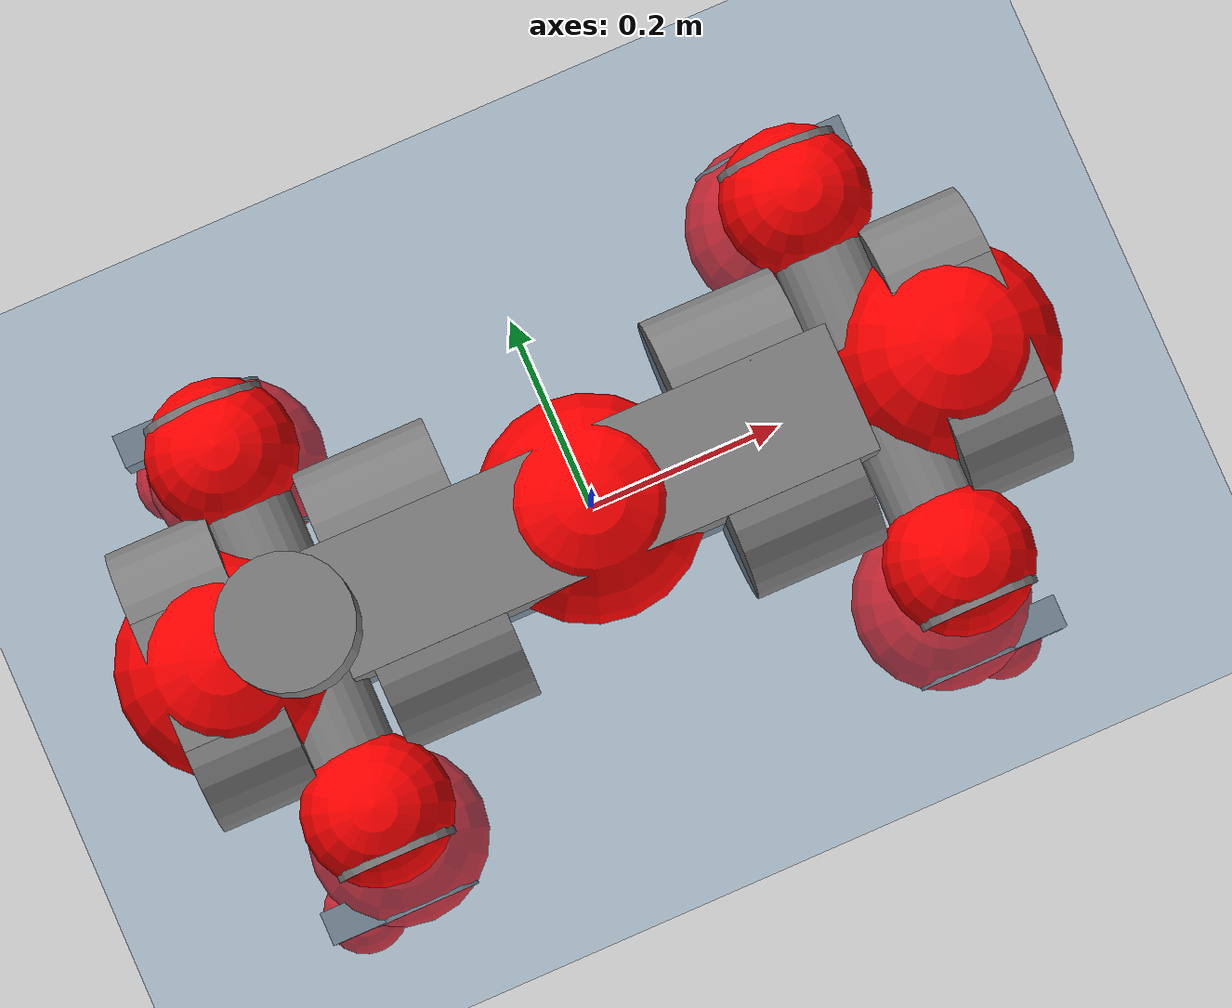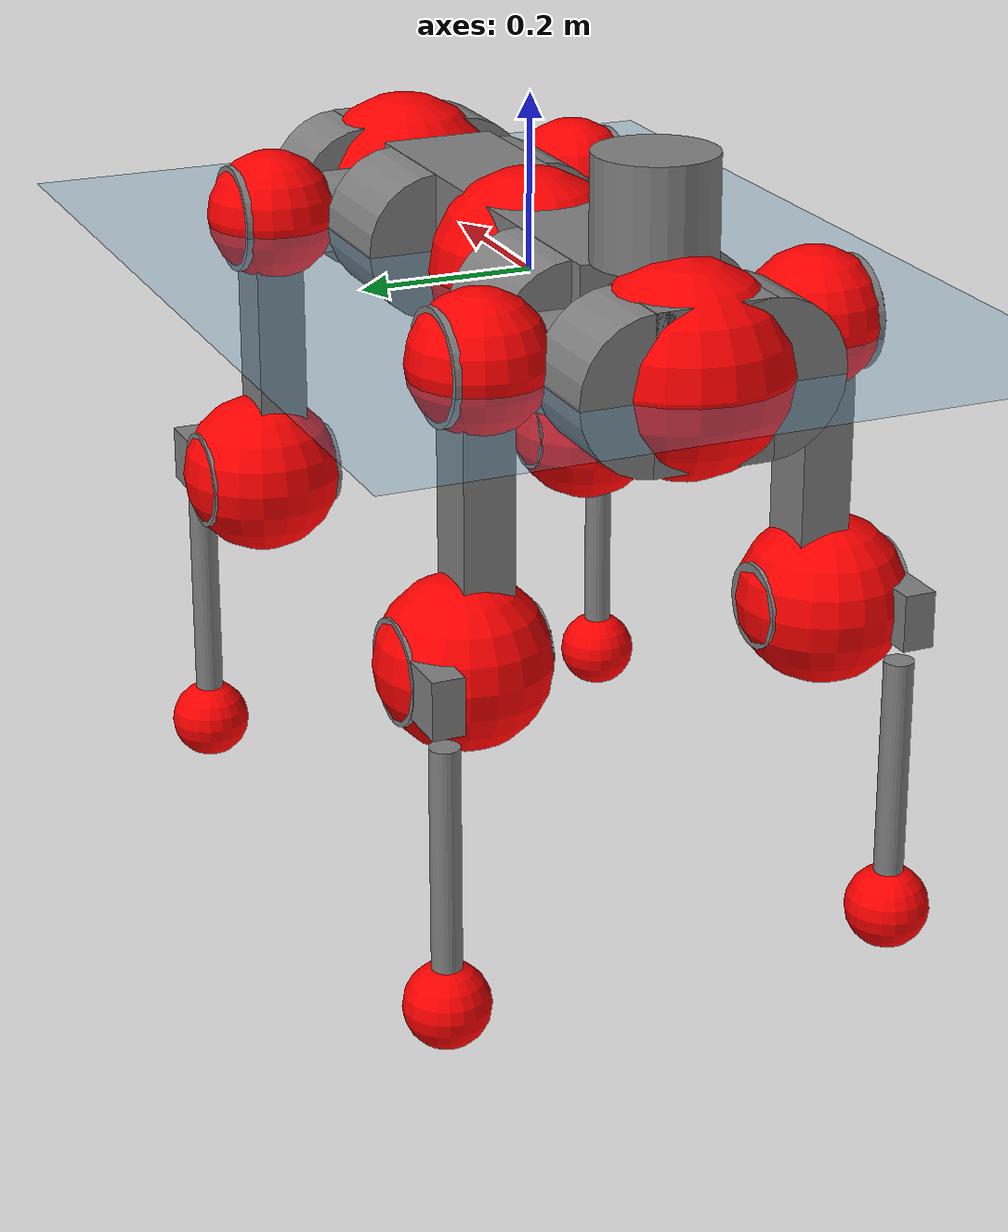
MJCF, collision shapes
<mujoco model="anymal_c">
  <compiler angle="radian" assetdir="assets" balanceinertia="true" inertiafromgeom="false"/>

  <option timestep="0.005" density="1.2" viscosity="2e-05"/>

  <size nkey="1"/>

  <visual>
    <quality shadowsize="8192"/>
    <map shadowclip="0.5"/>
  </visual>

  <default>
    <default class="/">
      <material specular="0" shininess="0.25"/>
      <geom contype="0" conaffinity="0" group="1" solref="-1000 -80"/>
      <site size="0.01 0.005 0.005" group="5"/>
      <general forcelimited="true" forcerange="-80 80" biastype="affine" gainprm="80" biasprm="0 -80 -2"/>
      <default class="anymal_c">
        <joint armature="0.01" damping="0.01" frictionloss="0.1"/>
        <default class="visual">
          <geom type="mesh" group="2"/>
          <default class="visual_zflip"/>
        </default>
        <default class="collision">
          <geom type="cylinder" group="3"/>
          <default class="foot">
            <geom size="0.03 0 0" type="sphere" condim="6" priority="1" friction="0.8 0.02 0.01" solimp="0.015 1 0.03"/>
          </default>
        </default>
      </default>
      <default class="reward_collision_sphere">
        <geom group="5" rgba="1 0 0 1"/>
      </default>
    </default>
  </default>

  <asset>
    <texture type="skybox" colorspace="auto" name="//unnamed_texture_0" builtin="gradient" rgb1="0.95 0.95 0.95" rgb2="0.95 0.95 0.95" width="100" height="600"/>
    <texture type="2d" colorspace="auto" name="texplane" builtin="checker" rgb1="0.345 0.575 0.748" rgb2="0.345 0.575 0.748" markrgb="1 1 1" width="512" height="512"/>
    <texture type="2d" colorspace="linear" name="base" file="base.png"/>
    <texture type="2d" colorspace="linear" name="top_shell" file="top_shell.png"/>
    <texture type="2d" colorspace="linear" name="bottom_shell" file="bottom_shell.png"/>
    <texture type="2d" colorspace="linear" name="remote" file="remote.png"/>
    <texture type="2d" colorspace="linear" name="hatch" file="hatch.png"/>
    <texture type="2d" colorspace="linear" name="handle" file="handle.png"/>
    <texture type="2d" colorspace="linear" name="face" file="face.png"/>
    <texture type="2d" colorspace="linear" name="battery" file="battery.png"/>
    <texture type="2d" colorspace="linear" name="lidar_cage" file="lidar_cage.png"/>
    <texture type="2d" colorspace="linear" name="depth_camera" file="depth_camera.png"/>
    <texture type="2d" colorspace="linear" name="wide_angle_camera" file="wide_angle_camera.png"/>
    <texture type="2d" colorspace="linear" name="lidar" file="lidar.png"/>
    <texture type="2d" colorspace="linear" name="drive" file="drive.png"/>
    <texture type="2d" colorspace="linear" name="hip_l" file="hip_l.png"/>
    <texture type="2d" colorspace="linear" name="shank_l" file="shank_l.png"/>
    <texture type="2d" colorspace="linear" name="foot" file="foot.png"/>
    <texture type="2d" colorspace="linear" name="thigh" file="thigh.png"/>
    <texture type="2d" colorspace="linear" name="shank_r" file="shank_r.png"/>
    <texture type="2d" colorspace="linear" name="hip_r" file="hip_r.png"/>
    <material name="MatPlane" class="/" texture="texplane" texuniform="true" texrepeat="2 2" specular="0.9" shininess="0.5"/>
    <material name="black_plastic" class="/" rgba="0.007 0.007 0.007 1"/>
    <material name="green" class="/" rgba="0.052 0.178 0.033 1"/>
    <material name="red" class="/" rgba="0.178 0.006 0.005 1"/>
    <material name="yellow" class="/" rgba="0.178 0.119 0.006 1"/>
    <material name="lwl" class="/" rgba="0.8 0.8 0.8 1"/>
    <material name="base" class="/" texture="base"/>
    <material name="top_shell" class="/" texture="top_shell"/>
    <material name="bottom_shell" class="/" texture="bottom_shell"/>
    <material name="hip_l" class="/" texture="hip_l"/>
    <material name="thigh" class="/" texture="thigh"/>
    <material name="shank_l" class="/" texture="shank_l"/>
    <material name="foot" class="/" texture="foot"/>
    <material name="hip_r" class="/" texture="hip_r"/>
    <material name="shank" class="/" texture="shank_r"/>
    <material name="hatch" class="/" texture="hatch"/>
    <material name="remote" class="/" texture="remote"/>
    <material name="handle" class="/" texture="handle"/>
    <material name="face" class="/" texture="face"/>
    <material name="depth_camera" class="/" texture="depth_camera"/>
    <material name="wide_angle_camera" class="/" texture="wide_angle_camera"/>
    <material name="battery" class="/" texture="battery"/>
    <material name="lidar_cage" class="/" texture="lidar_cage"/>
    <material name="lidar" class="/" texture="lidar"/>
    <material name="drive" class="/" texture="drive"/>
    <mesh name="base_0" class="/" file="base_0.obj"/>
    <mesh name="base_1" class="/" file="base_1.obj"/>
    <mesh name="base_2" class="/" file="base_2.obj"/>
    <mesh name="base_3" class="/" file="base_3.obj"/>
    <mesh name="base_4" class="/" file="base_4.obj"/>
    <mesh name="base_5" class="/" file="base_5.obj"/>
    <mesh name="top_shell" class="/" file="top_shell.obj"/>
    <mesh name="bottom_shell" class="/" file="bottom_shell.obj"/>
    <mesh name="remote" class="/" file="remote.obj"/>
    <mesh name="handle" class="/" file="handle.obj"/>
    <mesh name="face" class="/" file="face.obj"/>
    <mesh name="wide_angle_camera" class="/" file="wide_angle_camera.obj"/>
    <mesh name="depth_camera" class="/" file="depth_camera.obj"/>
    <mesh name="battery" class="/" file="battery.obj"/>
    <mesh name="lidar_cage" class="/" file="lidar_cage.obj"/>
    <mesh name="lidar" class="/" file="lidar.obj"/>
    <mesh name="drive" class="/" file="drive.obj"/>
    <mesh name="hip_l" class="/" file="hip_l.obj"/>
    <mesh name="thigh" class="/" file="thigh.obj"/>
    <mesh name="shank_l" class="/" file="shank_l.obj"/>
    <mesh name="foot" class="/" file="foot.obj"/>
    <mesh name="hip_r" class="/" file="hip_r.obj"/>
    <mesh name="hatch" class="/" file="hatch.obj"/>
    <mesh name="shank_r" class="/" file="shank_r.obj"/>
  </asset>

  <worldbody>
    <geom name="floor" class="/" size="100 100 0.125" type="plane" group="0" material="MatPlane"/>
    <light name="toplight_shadow" class="/" pos="0 0 5" dir="0.0990148 0.0990148 -0.990148" type="directional" ambient="0.04 0.04 0.04" diffuse="0.55 0.55 0.55" specular="0.12 0.12 0.12"/>
    <light name="toplight_fill" class="/" pos="0 0 5" dir="0.0990148 0.0990148 -0.990148" type="directional" castshadow="false" ambient="0.04 0.04 0.04" diffuse="0.3 0.3 0.3" specular="0.08 0.08 0.08"/>
    <body name="trunk" childclass="anymal_c" pos="-0.00250303 -0.000508823 0.00218179" quat="1 -0.000305011 0.000626804 0.000365135">
      <inertial pos="0.00754669 0.00262884 0.0543172" quat="0.495644 0.494844 0.498945 0.510412" mass="15.8916" diaginertia="0.28766 0.351358 0.398132"/>
      <joint name="//unnamed_joint_0" type="free" armature="0" damping="0" frictionloss="0"/>
      <geom name="//unnamed_geom_1" class="visual" material="green" mesh="base_0"/>
      <geom name="//unnamed_geom_2" class="visual" material="yellow" mesh="base_1"/>
      <geom name="//unnamed_geom_3" class="visual" material="red" mesh="base_2"/>
      <geom name="//unnamed_geom_4" class="visual" material="black_plastic" mesh="base_3"/>
      <geom name="//unnamed_geom_5" class="visual" material="lwl" mesh="base_4"/>
      <geom name="//unnamed_geom_6" class="visual" material="base" mesh="base_5"/>
      <geom name="trunk_1" class="collision" size="0.277044 0.0668728 0.0859793" type="box"/>
      <geom name="trunk_2" class="collision" size="0.0859793 0.0692611" pos="0.185654 0.0623435 0" quat="0.707107 0 0.707107 0"/>
      <geom name="trunk_3" class="collision" size="0.0859793 0.0692611" pos="-0.185654 0.0623435 0" quat="0.707107 0 0.707107 0"/>
      <geom name="trunk_4" class="collision" size="0.0859793 0.0692611" pos="0.185654 -0.0623435 0" quat="0.707107 0 0.707107 0"/>
      <geom name="trunk_5" class="collision" size="0.0859793 0.0692611" pos="-0.185654 -0.0623435 0" quat="0.707107 0 0.707107 0"/>
      <geom name="//unnamed_geom_12" class="visual" material="top_shell" mesh="top_shell"/>
      <geom name="//unnamed_geom_13" class="visual" material="bottom_shell" mesh="bottom_shell"/>
      <geom name="//unnamed_geom_14" class="visual" material="remote" mesh="remote"/>
      <geom name="//unnamed_geom_15" class="visual" material="handle" mesh="handle"/>
      <geom name="//unnamed_geom_16" class="visual" pos="0.353809 0 0" quat="1 0 0 0" material="face" mesh="face"/>
      <geom name="trunk_6" class="collision" size="0.0525429 0.0668728 0.0859793" pos="0.400756 0 0" type="box"/>
      <geom name="//unnamed_geom_18" class="collision" size="0.0859793 0.0525429" pos="0.400756 0.0623435 0" quat="0.707107 0 0.707107 0"/>
      <geom name="//unnamed_geom_19" class="collision" size="0.0859793 0.0525429" pos="0.400756 -0.0623435 0" quat="0.707107 0 0.707107 0"/>
      <geom name="//unnamed_geom_20" class="visual" pos="0.394066 0 -0.0347941" quat="0.965926 0 0.258819 0" material="depth_camera" mesh="depth_camera"/>
      <geom name="//unnamed_geom_21" class="visual" pos="0.437886 0 0.016793" material="wide_angle_camera" mesh="wide_angle_camera"/>
      <geom name="//unnamed_geom_22" class="visual_zflip" pos="-0.353809 0 0" quat="0 0 0 1" material="face" mesh="face"/>
      <geom name="trunk_7" class="collision" size="0.0525429 0.0668728 0.0859793" pos="-0.400756 0 0" quat="0 0 0 1" type="box"/>
      <geom name="//unnamed_geom_24" class="collision" size="0.0859793 0.0525429" pos="-0.400756 -0.0623435 0" quat="0 -0.707107 0 0.707107"/>
      <geom name="//unnamed_geom_25" class="collision" size="0.0859793 0.0525429" pos="-0.400756 0.0623435 0" quat="0 -0.707107 0 0.707107"/>
      <geom name="//unnamed_geom_26" class="visual" pos="-0.394066 0 -0.0347941" quat="0 -0.258819 0 0.965926" material="depth_camera" mesh="depth_camera"/>
      <geom name="//unnamed_geom_27" class="visual_zflip" pos="-0.437886 0 0.016793" quat="0 0 0 1" material="wide_angle_camera" mesh="wide_angle_camera"/>
      <geom name="//unnamed_geom_28" class="visual" material="battery" mesh="battery"/>
      <geom name="//unnamed_geom_29" class="visual" pos="0 0.0685941 0.0305493" quat="0.683013 -0.183013 0.183013 0.683013" material="depth_camera" mesh="depth_camera"/>
      <geom name="//unnamed_geom_30" class="visual" pos="0 -0.0685941 0.0305493" quat="0.683013 0.183013 0.183013 -0.683013" material="depth_camera" mesh="depth_camera"/>
      <geom name="//unnamed_geom_31" class="visual" pos="-0.310703 0 0.0824505" quat="1 0 0 0" material="lidar_cage" mesh="lidar_cage"/>
      <geom name="trunk_8" class="collision" size="0.0668728 0.0573195" pos="-0.310703 0 0.149757"/>
      <geom name="//unnamed_geom_33" class="visual" pos="-0.310703 1.45526e-05 0.159516" quat="0.707107 0 0 -0.707107" material="lidar" mesh="lidar"/>
      <geom name="//unnamed_geom_34" class="visual" pos="0.255988 0.0927067 -3.98744e-09" quat="0.258819 0.965926 0 0" material="drive" mesh="drive"/>
      <geom name="//unnamed_geom_35" class="visual" pos="0.255988 -0.0927067 3.98744e-09" quat="0.258819 -0.965926 0 0" material="drive" mesh="drive"/>
      <geom name="//unnamed_geom_36" class="visual" pos="-0.255988 0.0927067 3.98744e-09" quat="0 0 0.965926 -0.258819" material="drive" mesh="drive"/>
      <geom name="//unnamed_geom_37" class="visual" pos="-0.255988 -0.0927067 -3.98744e-09" quat="0 0 -0.965926 -0.258819" material="drive" mesh="drive"/>
      <geom name="//unnamed_geom_38" class="visual" pos="0.0990152 0 0.0818896" quat="1 0 0 0" material="hatch" mesh="hatch"/>
      <geom name="//unnamed_geom_39" class="reward_collision_sphere" size="0.114639"/>
      <geom name="//unnamed_geom_40" class="reward_collision_sphere" size="0.114639" pos="0.384111 0 0"/>
      <geom name="//unnamed_geom_41" class="reward_collision_sphere" size="0.114639" pos="-0.384111 0 0"/>
      <site name="imu" pos="0.194205 0.00569329 0.0698291" size="0.00955325"/>
      <camera name="track" pos="0 -1.78124 0" quat="0.707107 0.707107 0 0" mode="trackcom"/>
      <camera name="ego_camera" pos="0.384111 0 -0.044871" quat="-0.5 -0.5 0.5 0.5"/>
      <body name="LF_HIP" pos="0.257369 0.0942349 -0.000411477" quat="0.2584 0.966037 -0.000905044 -0.000247908">
        <inertial pos="0.0480374 -0.0123533 -0.0105174" quat="-0.12865 0.709709 -0.135052 0.679356" mass="2.62373" diaginertia="0.00281331 0.00300986 0.00622331"/>
        <joint name="LF_HAA" pos="0 0 0" axis="0.999965 -0.0014721 -0.00826502" range="-0.727392 0.524859" armature="0.00978335" damping="0.00966413" frictionloss="0.0967353"/>
        <geom name="//unnamed_geom_42" class="visual" pos="0 -0.000234563 3.85268e-05" quat="0.258819 -0.965926 0 0" material="hip_l" mesh="hip_l"/>
        <geom name="//unnamed_geom_43" class="visual" pos="0.0511294 -0.062524 -0.037808" quat="0.183013 -0.683013 0.683013 0.183013" material="drive" mesh="drive"/>
        <geom name="//unnamed_geom_44" class="collision" size="0.0477663 0.0668728" pos="0.0511294 -0.0106516 -0.00774586" quat="-0.353553 -0.612372 0.612372 -0.353553"/>
        <body name="LF_THIGH" pos="0.0505266 -0.0686758 -0.0463666" quat="0.184399 -0.683261 0.68242 0.182903">
          <inertial pos="0.0272224 -5.63722e-05 -0.274763" quat="0.993281 -0.00281855 -0.0751328 0.0879801" mass="2.64827" diaginertia="0.0134359 0.0174317 0.007516"/>
          <joint name="LF_HFE" pos="0 0 0" axis="0.999955 0.00594881 -0.00742241" stiffness="0.00242125" range="-3.19449 3.13619" armature="0.00838824" damping="0.000753757" frictionloss="0.0924082"/>
          <geom name="//unnamed_geom_45" class="visual" pos="-0.000736978 -1.16131e-06 0" quat="0.707107 0 0 -0.707107" material="thigh" mesh="thigh"/>
          <geom name="//unnamed_geom_46" class="collision" size="0.0620961 0.038213" pos="0.0341432 0 0" quat="0.5 0.5 -0.5 -0.5"/>
          <geom name="//unnamed_geom_47" class="collision" size="0.0358247 0.0286598 0.135001" pos="0.0256074 0 -0.158523" quat="0.707107 0 0 -0.707107" type="box"/>
          <geom name="//unnamed_geom_48" class="visual" pos="0.085614 0 -0.319706" quat="1 0 0 0" material="drive" mesh="drive"/>
          <geom name="//unnamed_geom_49" class="collision" size="0.0477663 0.0668728" pos="0.0258635 0 -0.319706" quat="0.707107 0 0.707107 0"/>
          <geom name="//unnamed_geom_50" class="reward_collision_sphere" size="0.076426" pos="0.0213395 0 0"/>
          <body name="LF_SHANK" pos="0.0858919 -0.00283205 -0.321035" quat="0.999999 -0.00115718 -0.000370956 0.000528877">
            <inertial pos="0.00547277 -0.0519388 -0.0918554" quat="0.992843 -0.117025 -0.00101429 -0.0237916" mass="0.492503" diaginertia="0.00458486 0.00512265 0.00198907"/>
            <joint name="LF_KFE" pos="0 0 0" axis="0.999949 -0.00489875 0.00885189" stiffness="0.0121619" range="-3.1423 3.1259" armature="0.0105503" damping="0.0172781" frictionloss="0.0927987"/>
            <geom name="//unnamed_geom_51" class="visual" pos="-0.000240312 -0.00128136 0" quat="0.707107 0 0 -0.707107" material="shank_l" mesh="shank_l"/>
            <geom name="LF_kfe_act" class="collision" size="0.0573195 0.0191065" pos="0.0170716 0 0" quat="0.5 0.5 -0.5 -0.5"/>
            <geom name="//unnamed_geom_53" class="collision" size="0.0549302 0.0322422 0.0181512" pos="0.0170716 -0.0512098 0" quat="0.5 0.5 -0.5 -0.5" type="box"/>
            <geom name="//unnamed_geom_54" class="visual" pos="0.0111393 -0.078743 -0.379126" quat="0.382683 0 0 -0.92388" material="foot" mesh="foot"/>
            <geom name="LF_calf" class="collision" size="0.0167182 0.134942" pos="0.0111392 -0.0783301 -0.189563" quat="0.707107 0 0 -0.707107"/>
            <geom name="LF_foot" class="foot" size="0.0300493" pos="0.0111392 -0.0783301 -0.353886" quat="0.707107 0 0 -0.707107"/>
            <geom name="//unnamed_geom_57" class="reward_collision_sphere" size="0.0955325" pos="-0.042679 0 0"/>
            <geom name="//unnamed_geom_58" class="reward_collision_sphere" size="0.0477663" pos="0.0111392 -0.0783301 -0.353886"/>
            <site name="LF_foot" class="foot" pos="0.0111392 -0.0783301 -0.353886" quat="0.707107 0 0 -0.707107" size="0.00955325"/>
          </body>
        </body>
      </body>
      <body name="RF_HIP" pos="0.259963 -0.092833 -0.00276992" quat="0.258878 -0.96591 -0.000477108 -0.000217585">
        <inertial pos="0.0483462 0.0193042 -0.00917478" quat="0.153787 0.677685 0.113865 0.710019" mass="2.45532" diaginertia="0.00278716 0.0027131 0.00609959"/>
        <joint name="RF_HAA" pos="0 0 0" axis="0.99996 -0.00887333 0.00107429" range="-0.449286 0.731463" armature="0.00889003" damping="0.0144755" frictionloss="0.105387"/>
        <geom name="//unnamed_geom_59" class="visual" pos="0 0.000234561 3.85267e-05" quat="0.258819 0.965926 0 0" material="hip_r" mesh="hip_r"/>
        <geom name="//unnamed_geom_60" class="visual" pos="0.0511294 0.062524 -0.037808" quat="0.183013 0.683013 0.683013 -0.183013" material="drive" mesh="drive"/>
        <geom name="//unnamed_geom_61" class="collision" size="0.0477663 0.0668728" pos="0.0511294 0.0106516 -0.00774586" quat="-0.353553 0.612372 0.612372 0.353553"/>
        <body name="RF_THIGH" pos="0.0521215 0.0637012 -0.0446713" quat="0.183476 0.682201 0.68371 -0.182973">
          <inertial pos="0.0225948 -0.00245102 -0.276239" quat="0.992699 -0.00737382 -0.0809649 0.0891043" mass="2.54666" diaginertia="0.0132737 0.0166625 0.00687335"/>
          <joint name="RF_HFE" pos="0 0 0" axis="1 -0.000148076 0.00014953" stiffness="0.00574455" range="-3.09895 3.09362" armature="0.00958308" damping="0.00660216" frictionloss="0.103973"/>
          <geom name="//unnamed_geom_62" class="visual" pos="-0.000736978 -1.16131e-06 0" quat="0.707107 0 0 -0.707107" material="thigh" mesh="thigh"/>
          <geom name="//unnamed_geom_63" class="collision" size="0.0620961 0.038213" pos="0.0341432 0 0" quat="0.5 0.5 0.5 0.5"/>
          <geom name="//unnamed_geom_64" class="collision" size="0.0358247 0.0286598 0.135001" pos="0.0256074 0 -0.158523" quat="0.707107 0 0 0.707107" type="box"/>
          <geom name="//unnamed_geom_65" class="visual" pos="0.085614 0 -0.319706" quat="1 0 0 0" material="drive" mesh="drive"/>
          <geom name="//unnamed_geom_66" class="collision" size="0.0477663 0.0668728" pos="0.0258635 0 -0.319706" quat="0.707107 0 0.707107 0"/>
          <geom name="//unnamed_geom_67" class="reward_collision_sphere" size="0.076426" pos="0.0213395 0 0"/>
          <body name="RF_SHANK" pos="0.0849694 -0.000598648 -0.319328" quat="1 0.000218218 -0.000227391 3.15313e-05">
            <inertial pos="0.00601444 0.0544919 -0.0901377" quat="0.990626 0.134547 0.0105671 0.0211126" mass="0.506669" diaginertia="0.00462226 0.00498486 0.00193121"/>
            <joint name="RF_KFE" pos="0 0 0" axis="0.999967 0.00501539 -0.00635496" stiffness="0.0179461" range="-3.06247 3.13145" armature="0.00868275" damping="0" frictionloss="0.102925"/>
            <geom name="//unnamed_geom_68" class="visual" pos="-0.000240311 0.00128136 0" quat="0.707107 0 0 0.707107" material="shank" mesh="shank_r"/>
            <geom name="RF_kfe_act" class="collision" size="0.0573195 0.0191065" pos="0.0170716 0 0" quat="0.5 0.5 0.5 0.5"/>
            <geom name="//unnamed_geom_70" class="collision" size="0.0549302 0.0322422 0.0181512" pos="0.0170716 0.0512098 0" quat="0.5 0.5 0.5 0.5" type="box"/>
            <geom name="//unnamed_geom_71" class="visual" pos="0.0111392 0.078743 -0.379126" quat="0.382683 0 0 0.92388" material="foot" mesh="foot"/>
            <geom name="RF_calf" class="collision" size="0.0167182 0.134942" pos="0.0111392 0.0783301 -0.189563" quat="0.707107 0 0 0.707107"/>
            <geom name="RF_foot" class="foot" size="0.0299363" pos="0.0111392 0.0783301 -0.353886" quat="0.707107 0 0 0.707107"/>
            <geom name="//unnamed_geom_74" class="reward_collision_sphere" size="0.0955325" pos="-0.042679 0 0"/>
            <geom name="//unnamed_geom_75" class="reward_collision_sphere" size="0.0477663" pos="0.0111392 0.0783301 -0.353886"/>
            <site name="RF_foot" class="foot" pos="0.0111392 0.0783301 -0.353886" quat="0.707107 0 0 0.707107" size="0.00955325"/>
          </body>
        </body>
      </body>
      <body name="LH_HIP" pos="-0.258733 0.0934484 0.00245423" quat="-4.95972e-06 -1.79796e-06 0.965928 -0.258813">
        <inertial pos="0.0480927 0.0131138 -0.00503525" quat="0.129198 0.681762 0.132377 0.707803" mass="2.29361" diaginertia="0.00234353 0.00253774 0.00549258"/>
        <joint name="LH_HAA" pos="0 0 0" axis="0.999965 0.000420493 -0.00838151" range="-0.485202 0.765335" armature="0.00862771" damping="0.0230214" frictionloss="0.0938999"/>
        <geom name="//unnamed_geom_76" class="visual" pos="0 0.000234561 3.85267e-05" quat="-0.258819 -0.965926 0 0" material="hip_r" mesh="hip_r"/>
        <geom name="//unnamed_geom_77" class="visual" pos="0.0511294 0.062524 -0.037808" quat="0.183013 0.683013 0.683013 -0.183013" material="drive" mesh="drive"/>
        <geom name="//unnamed_geom_78" class="collision" size="0.0477663 0.0668728" pos="0.0511294 0.0106516 -0.00774586" quat="-0.353553 0.612372 0.612372 0.353553"/>
        <body name="LH_THIGH" pos="0.0509246 0.0636008 -0.0454673" quat="0.183511 0.682716 0.683005 -0.183652">
          <inertial pos="0.0317122 0.00217459 -0.271289" quat="0.992666 -0.00223943 -0.0798678 0.0907244" mass="2.63514" diaginertia="0.0146581 0.016755 0.00768183"/>
          <joint name="LH_HFE" pos="0 0 0" axis="0.999988 0.00464702 -0.00123775" range="-3.16306 3.14329" armature="0.010753" damping="0.0107513" frictionloss="0.0961307"/>
          <geom name="//unnamed_geom_79" class="visual" pos="-0.000736978 -1.16131e-06 0" quat="0.707107 0 0 -0.707107" material="thigh" mesh="thigh"/>
          <geom name="//unnamed_geom_80" class="collision" size="0.0620961 0.038213" pos="0.0341432 0 0" quat="0.5 0.5 -0.5 -0.5"/>
          <geom name="//unnamed_geom_81" class="collision" size="0.0358247 0.0286598 0.135001" pos="0.0256074 0 -0.158523" quat="0.707107 0 0 -0.707107" type="box"/>
          <geom name="//unnamed_geom_82" class="visual" pos="0.085614 0 -0.319706" quat="1 0 0 0" material="drive" mesh="drive"/>
          <geom name="//unnamed_geom_83" class="collision" size="0.0477663 0.0668728" pos="0.0258635 0 -0.319706" quat="0.707107 0 0.707107 0"/>
          <geom name="//unnamed_geom_84" class="reward_collision_sphere" size="0.076426" pos="0.0213395 0 0"/>
          <body name="LH_SHANK" pos="0.0842017 0.00175196 -0.322731" quat="1 0.000207063 0.000162686 -0.000120981">
            <inertial pos="0.0057806 0.0517413 -0.0927169" quat="0.992881 0.116306 -0.000618675 0.0256998" mass="0.476813" diaginertia="0.00430331 0.00466361 0.00190504"/>
            <joint name="LH_KFE" pos="0 0 0" axis="0.999926 -0.0118166 0.00275778" stiffness="0.00506306" range="-3.18996 3.1493" armature="0.00779319" damping="0" frictionloss="0.105189"/>
            <geom name="//unnamed_geom_85" class="visual" pos="-0.000240311 0.00128136 0" quat="-0.707107 0 0 -0.707107" material="shank" mesh="shank_r"/>
            <geom name="LH_kfe_act" class="collision" size="0.0573195 0.0191065" pos="0.0170716 0 0" quat="0.5 0.5 -0.5 -0.5"/>
            <geom name="//unnamed_geom_87" class="collision" size="0.0549302 0.0322422 0.0181512" pos="0.0170716 0.0512098 0" quat="0.5 0.5 -0.5 -0.5" type="box"/>
            <geom name="//unnamed_geom_88" class="visual" pos="0.0111392 0.078743 -0.379126" quat="-0.382683 0 0 -0.92388" material="foot" mesh="foot"/>
            <geom name="LH_calf" class="collision" size="0.0167182 0.134942" pos="0.0111392 0.0783301 -0.189563" quat="0.707107 0 0 -0.707107"/>
            <geom name="LH_foot" class="foot" size="0.0318161" pos="0.0111392 0.0783301 -0.353886" quat="0.707107 0 0 -0.707107"/>
            <geom name="//unnamed_geom_91" class="reward_collision_sphere" size="0.0955325" pos="-0.042679 0 0"/>
            <geom name="//unnamed_geom_92" class="reward_collision_sphere" size="0.0477663" pos="0.0111392 0.0783301 -0.353886"/>
            <site name="LH_foot" class="foot" pos="0.0111392 0.0783301 -0.353886" quat="0.707107 0 0 -0.707107" size="0.00955325"/>
          </body>
        </body>
      </body>
      <body name="RH_HIP" pos="-0.261394 -0.0908116 0.00172841" quat="-0.000591118 -0.00039434 -0.965891 -0.258947">
        <inertial pos="0.0479456 -0.0127917 -0.00514475" quat="-0.107349 0.70659 -0.118357 0.689347" mass="2.51361" diaginertia="0.00281054 0.00291027 0.00622253"/>
        <joint name="RH_HAA" pos="0 0 0" axis="0.999856 -0.00712048 -0.0153754" range="-0.6606 0.510265" armature="0.00860054" damping="0.00530657" frictionloss="0.0937962"/>
        <geom name="//unnamed_geom_93" class="visual" pos="0 -0.000234563 3.85268e-05" quat="-0.258819 0.965926 0 0" material="hip_l" mesh="hip_l"/>
        <geom name="//unnamed_geom_94" class="visual" pos="0.0511294 -0.062524 -0.037808" quat="-0.183013 0.683013 -0.683013 -0.183013" material="drive" mesh="drive"/>
        <geom name="//unnamed_geom_95" class="collision" size="0.0477663 0.0668728" pos="0.0511294 -0.0106516 -0.00774586" quat="0.353553 0.612372 -0.612372 0.353553"/>
        <body name="RH_THIGH" pos="0.0466876 -0.0626182 -0.0438122" quat="-0.182529 0.682426 -0.683775 -0.182835">
          <inertial pos="0.0271046 0.000480438 -0.272974" quat="0.993412 -0.00505876 -0.0789463 0.0829166" mass="2.71124" diaginertia="0.013894 0.0164416 0.00723461"/>
          <joint name="RH_HFE" pos="0 0 0" axis="0.999923 0.0115572 -0.00459899" range="-3.1325 3.09814" armature="0.00840341" damping="0.0118682" frictionloss="0.0994827"/>
          <geom name="//unnamed_geom_96" class="visual" pos="-0.000736978 -1.16131e-06 0" quat="0.707107 0 0 -0.707107" material="thigh" mesh="thigh"/>
          <geom name="//unnamed_geom_97" class="collision" size="0.0620961 0.038213" pos="0.0341432 0 0" quat="0.5 0.5 0.5 0.5"/>
          <geom name="//unnamed_geom_98" class="collision" size="0.0358247 0.0286598 0.135001" pos="0.0256074 0 -0.158523" quat="0.707107 0 0 0.707107" type="box"/>
          <geom name="//unnamed_geom_99" class="visual" pos="0.085614 0 -0.319706" quat="1 0 0 0" material="drive" mesh="drive"/>
          <geom name="//unnamed_geom_100" class="collision" size="0.0477663 0.0668728" pos="0.0258635 0 -0.319706" quat="0.707107 0 0.707107 0"/>
          <geom name="//unnamed_geom_101" class="reward_collision_sphere" size="0.076426" pos="0.0213395 0 0"/>
          <body name="RH_SHANK" pos="0.0868622 -0.00184364 -0.321235" quat="0.999998 -0.00141437 0.00112891 5.75513e-05">
            <inertial pos="0.00284832 -0.0560955 -0.0880605" quat="0.993163 -0.112526 -0.00155886 -0.0310187" mass="0.499001" diaginertia="0.00454444 0.00516909 0.00194546"/>
            <joint name="RH_KFE" pos="0 0 0" axis="0.999813 0.0126243 0.0146323" stiffness="0.00769003" range="-3.14543 3.07535" armature="0.00957989" damping="0" frictionloss="0.103137"/>
            <geom name="//unnamed_geom_102" class="visual" pos="-0.000240312 -0.00128136 0" quat="0.707107 0 0 -0.707107" material="shank_l" mesh="shank_l"/>
            <geom name="RH_kfe_act" class="collision" size="0.0573195 0.0191065" pos="0.0170716 0 0" quat="0.5 0.5 0.5 0.5"/>
            <geom name="//unnamed_geom_104" class="collision" size="0.0549302 0.0322422 0.0181512" pos="0.0170716 -0.0512098 0" quat="0.5 0.5 0.5 0.5" type="box"/>
            <geom name="//unnamed_geom_105" class="visual" pos="0.0111393 -0.078743 -0.379126" quat="0.382683 0 0 -0.92388" material="foot" mesh="foot"/>
            <geom name="RH_calf" class="collision" size="0.0167182 0.134942" pos="0.0111392 -0.0783301 -0.189563" quat="0.707107 0 0 0.707107"/>
            <geom name="RH_foot" class="foot" size="0.0285007" pos="0.0111392 -0.0783301 -0.353886" quat="0.707107 0 0 0.707107"/>
            <geom name="//unnamed_geom_108" class="reward_collision_sphere" size="0.0955325" pos="-0.042679 0 0"/>
            <geom name="//unnamed_geom_109" class="reward_collision_sphere" size="0.0477663" pos="0.0111392 -0.0783301 -0.353886"/>
            <site name="RH_foot" class="foot" pos="0.0111392 -0.0783301 -0.353886" quat="0.707107 0 0 0.707107" size="0.00955325"/>
          </body>
        </body>
      </body>
    </body>
  </worldbody>

  <contact>
    <pair class="/" geom1="floor" geom2="LF_foot" name="//unnamed_contact_0"/>
    <pair class="/" geom1="floor" geom2="RF_foot" name="//unnamed_contact_1"/>
    <pair class="/" geom1="floor" geom2="LH_foot" name="//unnamed_contact_2"/>
    <pair class="/" geom1="floor" geom2="RH_foot" name="//unnamed_contact_3"/>
  </contact>

  <actuator>
    <general name="LF_HAA" class="/" joint="LF_HAA" forcerange="-80.5391 80.5391" gainprm="74.9183" biasprm="0 -74.9183 -1.8367"/>
    <general name="LF_HFE" class="/" joint="LF_HFE" forcerange="-88.2095 88.2095" gainprm="74.9183" biasprm="0 -74.9183 -1.8367"/>
    <general name="LF_KFE" class="/" joint="LF_KFE" forcerange="-70.2852 70.2852" gainprm="74.9183" biasprm="0 -74.9183 -1.8367"/>
    <general name="RF_HAA" class="/" joint="RF_HAA" forcerange="-78.8983 78.8983" gainprm="74.9183" biasprm="0 -74.9183 -1.8367"/>
    <general name="RF_HFE" class="/" joint="RF_HFE" forcerange="-74.9353 74.9353" gainprm="74.9183" biasprm="0 -74.9183 -1.8367"/>
    <general name="RF_KFE" class="/" joint="RF_KFE" forcerange="-69.7652 69.7652" gainprm="74.9183" biasprm="0 -74.9183 -1.8367"/>
    <general name="LH_HAA" class="/" joint="LH_HAA" forcerange="-78.3833 78.3833" gainprm="74.9183" biasprm="0 -74.9183 -1.8367"/>
    <general name="LH_HFE" class="/" joint="LH_HFE" forcerange="-79.2628 79.2628" gainprm="74.9183" biasprm="0 -74.9183 -1.8367"/>
    <general name="LH_KFE" class="/" joint="LH_KFE" forcerange="-83.2705 83.2705" gainprm="74.9183" biasprm="0 -74.9183 -1.8367"/>
    <general name="RH_HAA" class="/" joint="RH_HAA" forcerange="-72.7017 72.7017" gainprm="74.9183" biasprm="0 -74.9183 -1.8367"/>
    <general name="RH_HFE" class="/" joint="RH_HFE" forcerange="-69.3686 69.3686" gainprm="74.9183" biasprm="0 -74.9183 -1.8367"/>
    <general name="RH_KFE" class="/" joint="RH_KFE" forcerange="-84.0874 84.0874" gainprm="74.9183" biasprm="0 -74.9183 -1.8367"/>
  </actuator>

  <sensor>
    <gyro site="imu" name="imu_angular_velocity"/>
    <velocimeter site="imu" name="imu_linear_velocity"/>
    <framelinvel objtype="site" objname="LF_foot" name="LF_foot_global_linear_velocity"/>
    <framelinvel objtype="site" objname="RF_foot" name="RF_foot_global_linear_velocity"/>
    <framelinvel objtype="site" objname="LH_foot" name="LH_foot_global_linear_velocity"/>
    <framelinvel objtype="site" objname="RH_foot" name="RH_foot_global_linear_velocity"/>
  </sensor>

  <keyframe>
    <key name="home" qpos="0 0 0.55 1 0 0 0 0 0.4 -0.8 0 -0.4 0.8 0 -0.4 0.8 0 0.4 -0.8"/>
  </keyframe>
</mujoco>
